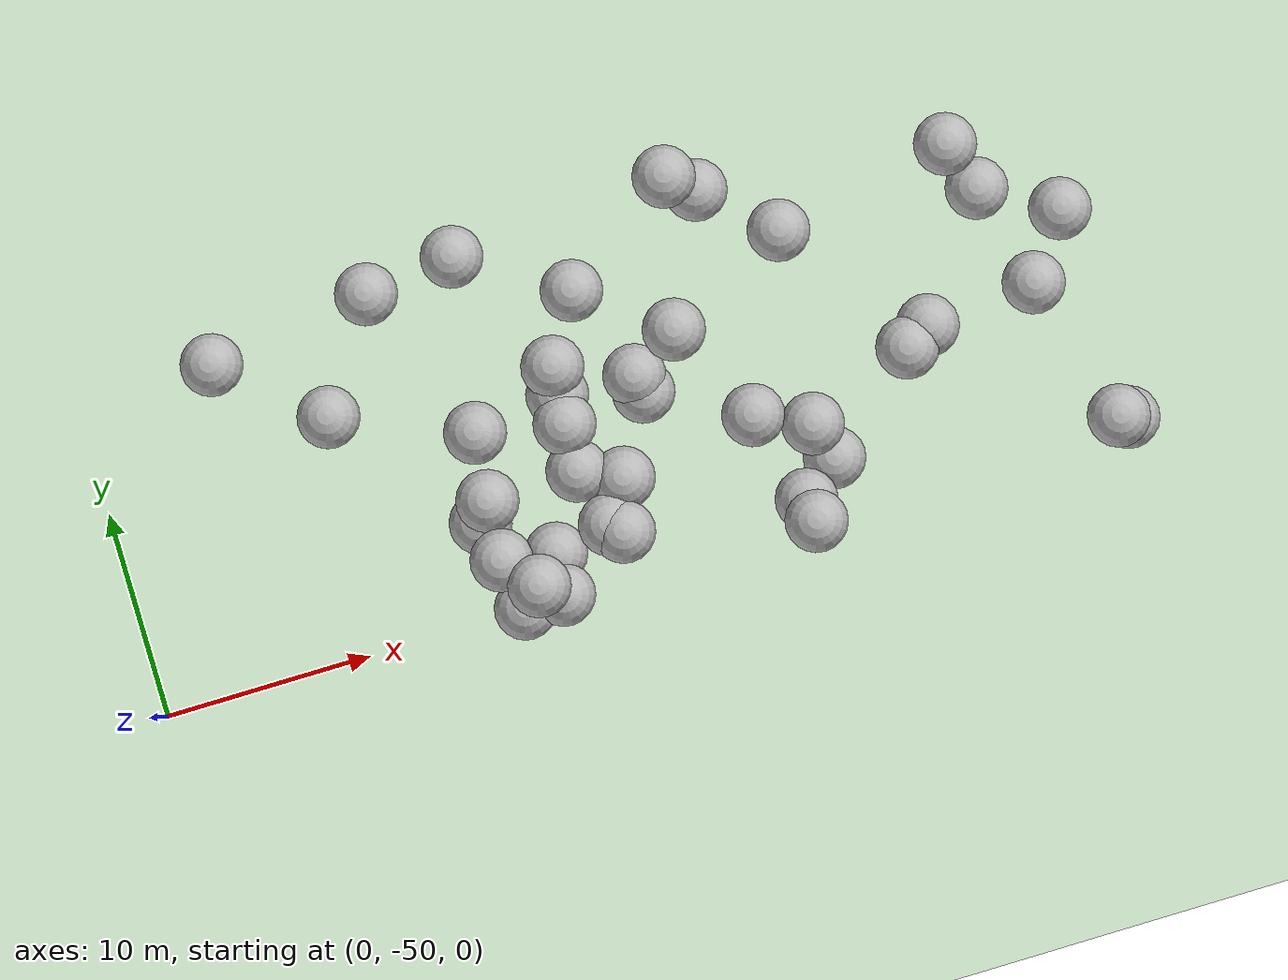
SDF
<sdf version="1.5">
 <world name="default">
  <model name="tree_simple494">
   <static>1</static>
   <link name="link">
    <pose>0 0 0.1 0 -0 0</pose>
    <collision name="collision_trunk">
     <pose>0 0 2 0 -0 0</pose>
     <geometry><cylinder><radius>0.25</radius><length>4</length></cylinder></geometry>
    </collision>
    <collision name="collision_treetop">
     <pose>0 0 5.2 0 -0 0</pose>
     <geometry><sphere><radius>1.5</radius></sphere></geometry>
    </collision>
    <visual name="trunk">
     <pose>0 0 2 0 -0 0</pose>
     <geometry><cylinder><radius>0.25</radius><length>4</length></cylinder></geometry>
     <material>
      <script>
       <uri>model://tree_simple/scripts</uri>
       <uri>model://tree_simple/materials/textures</uri>
       <name>TreeSimple/Trunk</name>
      </script>
     </material>
    </visual>
    <visual name="treetop">
     <pose>0 0 5.2 0 -0 0</pose>
     <geometry><sphere><radius>1.5</radius></sphere></geometry>
     <material>
      <script>
       <uri>model://tree_simple/scripts</uri>
       <uri>model://tree_simple/materials/textures</uri>
       <name>TreeSimple/Treetop</name>
      </script>
     </material>
    </visual>
   </link>
   <pose>39.6521252177 -42.647901406 -1.601959565637076 0 -0 0</pose>
  </model>
  <model name="tree_simple484">
   <static>1</static>
   <link name="link">
    <pose>0 0 0.1 0 -0 0</pose>
    <collision name="collision_trunk">
     <pose>0 0 2 0 -0 0</pose>
     <geometry><cylinder><radius>0.25</radius><length>4</length></cylinder></geometry>
    </collision>
    <collision name="collision_treetop">
     <pose>0 0 5.2 0 -0 0</pose>
     <geometry><sphere><radius>1.5</radius></sphere></geometry>
    </collision>
    <visual name="trunk">
     <pose>0 0 2 0 -0 0</pose>
     <geometry><cylinder><radius>0.25</radius><length>4</length></cylinder></geometry>
     <material>
      <script>
       <uri>model://tree_simple/scripts</uri>
       <uri>model://tree_simple/materials/textures</uri>
       <name>TreeSimple/Trunk</name>
      </script>
     </material>
    </visual>
    <visual name="treetop">
     <pose>0 0 5.2 0 -0 0</pose>
     <geometry><sphere><radius>1.5</radius></sphere></geometry>
     <material>
      <script>
       <uri>model://tree_simple/scripts</uri>
       <uri>model://tree_simple/materials/textures</uri>
       <name>TreeSimple/Treetop</name>
      </script>
     </material>
    </visual>
   </link>
   <pose>19.8605088225 -47.9062304077 -2.568141716396418 0 -0 0</pose>
  </model>
  <model name="tree_simple464">
   <static>1</static>
   <link name="link">
    <pose>0 0 0.1 0 -0 0</pose>
    <collision name="collision_trunk">
     <pose>0 0 2 0 -0 0</pose>
     <geometry><cylinder><radius>0.25</radius><length>4</length></cylinder></geometry>
    </collision>
    <collision name="collision_treetop">
     <pose>0 0 5.2 0 -0 0</pose>
     <geometry><sphere><radius>1.5</radius></sphere></geometry>
    </collision>
    <visual name="trunk">
     <pose>0 0 2 0 -0 0</pose>
     <geometry><cylinder><radius>0.25</radius><length>4</length></cylinder></geometry>
     <material>
      <script>
       <uri>model://tree_simple/scripts</uri>
       <uri>model://tree_simple/materials/textures</uri>
       <name>TreeSimple/Trunk</name>
      </script>
     </material>
    </visual>
    <visual name="treetop">
     <pose>0 0 5.2 0 -0 0</pose>
     <geometry><sphere><radius>1.5</radius></sphere></geometry>
     <material>
      <script>
       <uri>model://tree_simple/scripts</uri>
       <uri>model://tree_simple/materials/textures</uri>
       <name>TreeSimple/Treetop</name>
      </script>
     </material>
    </visual>
   </link>
   <pose>18.697132214 -49.1923863075 -0.11525973215710605 0 -0 0</pose>
  </model>
  <model name="tree_simple456">
   <static>1</static>
   <link name="link">
    <pose>0 0 0.1 0 -0 0</pose>
    <collision name="collision_trunk">
     <pose>0 0 2 0 -0 0</pose>
     <geometry><cylinder><radius>0.25</radius><length>4</length></cylinder></geometry>
    </collision>
    <collision name="collision_treetop">
     <pose>0 0 5.2 0 -0 0</pose>
     <geometry><sphere><radius>1.5</radius></sphere></geometry>
    </collision>
    <visual name="trunk">
     <pose>0 0 2 0 -0 0</pose>
     <geometry><cylinder><radius>0.25</radius><length>4</length></cylinder></geometry>
     <material>
      <script>
       <uri>model://tree_simple/scripts</uri>
       <uri>model://tree_simple/materials/textures</uri>
       <name>TreeSimple/Trunk</name>
      </script>
     </material>
    </visual>
    <visual name="treetop">
     <pose>0 0 5.2 0 -0 0</pose>
     <geometry><sphere><radius>1.5</radius></sphere></geometry>
     <material>
      <script>
       <uri>model://tree_simple/scripts</uri>
       <uri>model://tree_simple/materials/textures</uri>
       <name>TreeSimple/Treetop</name>
      </script>
     </material>
    </visual>
   </link>
   <pose>23.2076568155 -47.8591592767 -1.736414957528639 0 -0 0</pose>
  </model>
  <model name="tree_simple430">
   <static>1</static>
   <link name="link">
    <pose>0 0 0.1 0 -0 0</pose>
    <collision name="collision_trunk">
     <pose>0 0 2 0 -0 0</pose>
     <geometry><cylinder><radius>0.25</radius><length>4</length></cylinder></geometry>
    </collision>
    <collision name="collision_treetop">
     <pose>0 0 5.2 0 -0 0</pose>
     <geometry><sphere><radius>1.5</radius></sphere></geometry>
    </collision>
    <visual name="trunk">
     <pose>0 0 2 0 -0 0</pose>
     <geometry><cylinder><radius>0.25</radius><length>4</length></cylinder></geometry>
     <material>
      <script>
       <uri>model://tree_simple/scripts</uri>
       <uri>model://tree_simple/materials/textures</uri>
       <name>TreeSimple/Trunk</name>
      </script>
     </material>
    </visual>
    <visual name="treetop">
     <pose>0 0 5.2 0 -0 0</pose>
     <geometry><sphere><radius>1.5</radius></sphere></geometry>
     <material>
      <script>
       <uri>model://tree_simple/scripts</uri>
       <uri>model://tree_simple/materials/textures</uri>
       <name>TreeSimple/Treetop</name>
      </script>
     </material>
    </visual>
   </link>
   <pose>19.6675265043 -49.8829362896 -1.703781309365056 0 -0 0</pose>
  </model>
  <model name="tree_simple427">
   <static>1</static>
   <link name="link">
    <pose>0 0 0.1 0 -0 0</pose>
    <collision name="collision_trunk">
     <pose>0 0 2 0 -0 0</pose>
     <geometry><cylinder><radius>0.25</radius><length>4</length></cylinder></geometry>
    </collision>
    <collision name="collision_treetop">
     <pose>0 0 5.2 0 -0 0</pose>
     <geometry><sphere><radius>1.5</radius></sphere></geometry>
    </collision>
    <visual name="trunk">
     <pose>0 0 2 0 -0 0</pose>
     <geometry><cylinder><radius>0.25</radius><length>4</length></cylinder></geometry>
     <material>
      <script>
       <uri>model://tree_simple/scripts</uri>
       <uri>model://tree_simple/materials/textures</uri>
       <name>TreeSimple/Trunk</name>
      </script>
     </material>
    </visual>
    <visual name="treetop">
     <pose>0 0 5.2 0 -0 0</pose>
     <geometry><sphere><radius>1.5</radius></sphere></geometry>
     <material>
      <script>
       <uri>model://tree_simple/scripts</uri>
       <uri>model://tree_simple/materials/textures</uri>
       <name>TreeSimple/Treetop</name>
      </script>
     </material>
    </visual>
   </link>
   <pose>17.8220319496 -41.3749782968 -2.3696307674221067 0 -0 0</pose>
  </model>
  <model name="tree_simple423">
   <static>1</static>
   <link name="link">
    <pose>0 0 0.1 0 -0 0</pose>
    <collision name="collision_trunk">
     <pose>0 0 2 0 -0 0</pose>
     <geometry><cylinder><radius>0.25</radius><length>4</length></cylinder></geometry>
    </collision>
    <collision name="collision_treetop">
     <pose>0 0 5.2 0 -0 0</pose>
     <geometry><sphere><radius>1.5</radius></sphere></geometry>
    </collision>
    <visual name="trunk">
     <pose>0 0 2 0 -0 0</pose>
     <geometry><cylinder><radius>0.25</radius><length>4</length></cylinder></geometry>
     <material>
      <script>
       <uri>model://tree_simple/scripts</uri>
       <uri>model://tree_simple/materials/textures</uri>
       <name>TreeSimple/Trunk</name>
      </script>
     </material>
    </visual>
    <visual name="treetop">
     <pose>0 0 5.2 0 -0 0</pose>
     <geometry><sphere><radius>1.5</radius></sphere></geometry>
     <material>
      <script>
       <uri>model://tree_simple/scripts</uri>
       <uri>model://tree_simple/materials/textures</uri>
       <name>TreeSimple/Treetop</name>
      </script>
     </material>
    </visual>
   </link>
   <pose>22.6666902857 -47.3463091406 -1.957043072178223 0 -0 0</pose>
  </model>
  <model name="tree_simple422">
   <static>1</static>
   <link name="link">
    <pose>0 0 0.1 0 -0 0</pose>
    <collision name="collision_trunk">
     <pose>0 0 2 0 -0 0</pose>
     <geometry><cylinder><radius>0.25</radius><length>4</length></cylinder></geometry>
    </collision>
    <collision name="collision_treetop">
     <pose>0 0 5.2 0 -0 0</pose>
     <geometry><sphere><radius>1.5</radius></sphere></geometry>
    </collision>
    <visual name="trunk">
     <pose>0 0 2 0 -0 0</pose>
     <geometry><cylinder><radius>0.25</radius><length>4</length></cylinder></geometry>
     <material>
      <script>
       <uri>model://tree_simple/scripts</uri>
       <uri>model://tree_simple/materials/textures</uri>
       <name>TreeSimple/Trunk</name>
      </script>
     </material>
    </visual>
    <visual name="treetop">
     <pose>0 0 5.2 0 -0 0</pose>
     <geometry><sphere><radius>1.5</radius></sphere></geometry>
     <material>
      <script>
       <uri>model://tree_simple/scripts</uri>
       <uri>model://tree_simple/materials/textures</uri>
       <name>TreeSimple/Treetop</name>
      </script>
     </material>
    </visual>
   </link>
   <pose>46.9340594409 -49.3003062786 -0.717545281545801 0 -0 0</pose>
  </model>
  <model name="tree_simple406">
   <static>1</static>
   <link name="link">
    <pose>0 0 0.1 0 -0 0</pose>
    <collision name="collision_trunk">
     <pose>0 0 2 0 -0 0</pose>
     <geometry><cylinder><radius>0.25</radius><length>4</length></cylinder></geometry>
    </collision>
    <collision name="collision_treetop">
     <pose>0 0 5.2 0 -0 0</pose>
     <geometry><sphere><radius>1.5</radius></sphere></geometry>
    </collision>
    <visual name="trunk">
     <pose>0 0 2 0 -0 0</pose>
     <geometry><cylinder><radius>0.25</radius><length>4</length></cylinder></geometry>
     <material>
      <script>
       <uri>model://tree_simple/scripts</uri>
       <uri>model://tree_simple/materials/textures</uri>
       <name>TreeSimple/Trunk</name>
      </script>
     </material>
    </visual>
    <visual name="treetop">
     <pose>0 0 5.2 0 -0 0</pose>
     <geometry><sphere><radius>1.5</radius></sphere></geometry>
     <material>
      <script>
       <uri>model://tree_simple/scripts</uri>
       <uri>model://tree_simple/materials/textures</uri>
       <name>TreeSimple/Treetop</name>
      </script>
     </material>
    </visual>
   </link>
   <pose>31.8934217089 -48.8403630258 -2.7983030011231653 0 -0 0</pose>
  </model>
  <model name="tree_simple399">
   <static>1</static>
   <link name="link">
    <pose>0 0 0.1 0 -0 0</pose>
    <collision name="collision_trunk">
     <pose>0 0 2 0 -0 0</pose>
     <geometry><cylinder><radius>0.25</radius><length>4</length></cylinder></geometry>
    </collision>
    <collision name="collision_treetop">
     <pose>0 0 5.2 0 -0 0</pose>
     <geometry><sphere><radius>1.5</radius></sphere></geometry>
    </collision>
    <visual name="trunk">
     <pose>0 0 2 0 -0 0</pose>
     <geometry><cylinder><radius>0.25</radius><length>4</length></cylinder></geometry>
     <material>
      <script>
       <uri>model://tree_simple/scripts</uri>
       <uri>model://tree_simple/materials/textures</uri>
       <name>TreeSimple/Trunk</name>
      </script>
     </material>
    </visual>
    <visual name="treetop">
     <pose>0 0 5.2 0 -0 0</pose>
     <geometry><sphere><radius>1.5</radius></sphere></geometry>
     <material>
      <script>
       <uri>model://tree_simple/scripts</uri>
       <uri>model://tree_simple/materials/textures</uri>
       <name>TreeSimple/Treetop</name>
      </script>
     </material>
    </visual>
   </link>
   <pose>28.1463540184 -39.4724503771 -0.9812452284519781 0 -0 0</pose>
  </model>
  <model name="tree_simple362">
   <static>1</static>
   <link name="link">
    <pose>0 0 0.1 0 -0 0</pose>
    <collision name="collision_trunk">
     <pose>0 0 2 0 -0 0</pose>
     <geometry><cylinder><radius>0.25</radius><length>4</length></cylinder></geometry>
    </collision>
    <collision name="collision_treetop">
     <pose>0 0 5.2 0 -0 0</pose>
     <geometry><sphere><radius>1.5</radius></sphere></geometry>
    </collision>
    <visual name="trunk">
     <pose>0 0 2 0 -0 0</pose>
     <geometry><cylinder><radius>0.25</radius><length>4</length></cylinder></geometry>
     <material>
      <script>
       <uri>model://tree_simple/scripts</uri>
       <uri>model://tree_simple/materials/textures</uri>
       <name>TreeSimple/Trunk</name>
      </script>
     </material>
    </visual>
    <visual name="treetop">
     <pose>0 0 5.2 0 -0 0</pose>
     <geometry><sphere><radius>1.5</radius></sphere></geometry>
     <material>
      <script>
       <uri>model://tree_simple/scripts</uri>
       <uri>model://tree_simple/materials/textures</uri>
       <name>TreeSimple/Treetop</name>
      </script>
     </material>
    </visual>
   </link>
   <pose>44.985496552 -42.1503793978 -1.3581957760292536 0 -0 0</pose>
  </model>
  <model name="tree_simple355">
   <static>1</static>
   <link name="link">
    <pose>0 0 0.1 0 -0 0</pose>
    <collision name="collision_trunk">
     <pose>0 0 2 0 -0 0</pose>
     <geometry><cylinder><radius>0.25</radius><length>4</length></cylinder></geometry>
    </collision>
    <collision name="collision_treetop">
     <pose>0 0 5.2 0 -0 0</pose>
     <geometry><sphere><radius>1.5</radius></sphere></geometry>
    </collision>
    <visual name="trunk">
     <pose>0 0 2 0 -0 0</pose>
     <geometry><cylinder><radius>0.25</radius><length>4</length></cylinder></geometry>
     <material>
      <script>
       <uri>model://tree_simple/scripts</uri>
       <uri>model://tree_simple/materials/textures</uri>
       <name>TreeSimple/Trunk</name>
      </script>
     </material>
    </visual>
    <visual name="treetop">
     <pose>0 0 5.2 0 -0 0</pose>
     <geometry><sphere><radius>1.5</radius></sphere></geometry>
     <material>
      <script>
       <uri>model://tree_simple/scripts</uri>
       <uri>model://tree_simple/materials/textures</uri>
       <name>TreeSimple/Treetop</name>
      </script>
     </material>
    </visual>
   </link>
   <pose>25.975286884 -41.7874404901 -2.3355495982262253 0 -0 0</pose>
  </model>
  <model name="tree_simple329">
   <static>1</static>
   <link name="link">
    <pose>0 0 0.1 0 -0 0</pose>
    <collision name="collision_trunk">
     <pose>0 0 2 0 -0 0</pose>
     <geometry><cylinder><radius>0.25</radius><length>4</length></cylinder></geometry>
    </collision>
    <collision name="collision_treetop">
     <pose>0 0 5.2 0 -0 0</pose>
     <geometry><sphere><radius>1.5</radius></sphere></geometry>
    </collision>
    <visual name="trunk">
     <pose>0 0 2 0 -0 0</pose>
     <geometry><cylinder><radius>0.25</radius><length>4</length></cylinder></geometry>
     <material>
      <script>
       <uri>model://tree_simple/scripts</uri>
       <uri>model://tree_simple/materials/textures</uri>
       <name>TreeSimple/Trunk</name>
      </script>
     </material>
    </visual>
    <visual name="treetop">
     <pose>0 0 5.2 0 -0 0</pose>
     <geometry><sphere><radius>1.5</radius></sphere></geometry>
     <material>
      <script>
       <uri>model://tree_simple/scripts</uri>
       <uri>model://tree_simple/materials/textures</uri>
       <name>TreeSimple/Treetop</name>
      </script>
     </material>
    </visual>
   </link>
   <pose>22.038430334 -40.7859522783 -2.0823220013188153 0 -0 0</pose>
  </model>
  <model name="tree_simple300">
   <static>1</static>
   <link name="link">
    <pose>0 0 0.1 0 -0 0</pose>
    <collision name="collision_trunk">
     <pose>0 0 2 0 -0 0</pose>
     <geometry><cylinder><radius>0.25</radius><length>4</length></cylinder></geometry>
    </collision>
    <collision name="collision_treetop">
     <pose>0 0 5.2 0 -0 0</pose>
     <geometry><sphere><radius>1.5</radius></sphere></geometry>
    </collision>
    <visual name="trunk">
     <pose>0 0 2 0 -0 0</pose>
     <geometry><cylinder><radius>0.25</radius><length>4</length></cylinder></geometry>
     <material>
      <script>
       <uri>model://tree_simple/scripts</uri>
       <uri>model://tree_simple/materials/textures</uri>
       <name>TreeSimple/Trunk</name>
      </script>
     </material>
    </visual>
    <visual name="treetop">
     <pose>0 0 5.2 0 -0 0</pose>
     <geometry><sphere><radius>1.5</radius></sphere></geometry>
     <material>
      <script>
       <uri>model://tree_simple/scripts</uri>
       <uri>model://tree_simple/materials/textures</uri>
       <name>TreeSimple/Treetop</name>
      </script>
     </material>
    </visual>
   </link>
   <pose>34.2893754597 -36.2522401159 -2.972982537384032 0 -0 0</pose>
  </model>
  <model name="tree_simple281">
   <static>1</static>
   <link name="link">
    <pose>0 0 0.1 0 -0 0</pose>
    <collision name="collision_trunk">
     <pose>0 0 2 0 -0 0</pose>
     <geometry><cylinder><radius>0.25</radius><length>4</length></cylinder></geometry>
    </collision>
    <collision name="collision_treetop">
     <pose>0 0 5.2 0 -0 0</pose>
     <geometry><sphere><radius>1.5</radius></sphere></geometry>
    </collision>
    <visual name="trunk">
     <pose>0 0 2 0 -0 0</pose>
     <geometry><cylinder><radius>0.25</radius><length>4</length></cylinder></geometry>
     <material>
      <script>
       <uri>model://tree_simple/scripts</uri>
       <uri>model://tree_simple/materials/textures</uri>
       <name>TreeSimple/Trunk</name>
      </script>
     </material>
    </visual>
    <visual name="treetop">
     <pose>0 0 5.2 0 -0 0</pose>
     <geometry><sphere><radius>1.5</radius></sphere></geometry>
     <material>
      <script>
       <uri>model://tree_simple/scripts</uri>
       <uri>model://tree_simple/materials/textures</uri>
       <name>TreeSimple/Treetop</name>
      </script>
     </material>
    </visual>
   </link>
   <pose>17.7631793605 -49.9798329039 -2.204625489699892 0 -0 0</pose>
  </model>
  <model name="tree_simple280">
   <static>1</static>
   <link name="link">
    <pose>0 0 0.1 0 -0 0</pose>
    <collision name="collision_trunk">
     <pose>0 0 2 0 -0 0</pose>
     <geometry><cylinder><radius>0.25</radius><length>4</length></cylinder></geometry>
    </collision>
    <collision name="collision_treetop">
     <pose>0 0 5.2 0 -0 0</pose>
     <geometry><sphere><radius>1.5</radius></sphere></geometry>
    </collision>
    <visual name="trunk">
     <pose>0 0 2 0 -0 0</pose>
     <geometry><cylinder><radius>0.25</radius><length>4</length></cylinder></geometry>
     <material>
      <script>
       <uri>model://tree_simple/scripts</uri>
       <uri>model://tree_simple/materials/textures</uri>
       <name>TreeSimple/Trunk</name>
      </script>
     </material>
    </visual>
    <visual name="treetop">
     <pose>0 0 5.2 0 -0 0</pose>
     <geometry><sphere><radius>1.5</radius></sphere></geometry>
     <material>
      <script>
       <uri>model://tree_simple/scripts</uri>
       <uri>model://tree_simple/materials/textures</uri>
       <name>TreeSimple/Treetop</name>
      </script>
     </material>
    </visual>
   </link>
   <pose>42.8499474232 -34.7520527621 -0.9931672750604357 0 -0 0</pose>
  </model>
  <model name="tree_simple261">
   <static>1</static>
   <link name="link">
    <pose>0 0 0.1 0 -0 0</pose>
    <collision name="collision_trunk">
     <pose>0 0 2 0 -0 0</pose>
     <geometry><cylinder><radius>0.25</radius><length>4</length></cylinder></geometry>
    </collision>
    <collision name="collision_treetop">
     <pose>0 0 5.2 0 -0 0</pose>
     <geometry><sphere><radius>1.5</radius></sphere></geometry>
    </collision>
    <visual name="trunk">
     <pose>0 0 2 0 -0 0</pose>
     <geometry><cylinder><radius>0.25</radius><length>4</length></cylinder></geometry>
     <material>
      <script>
       <uri>model://tree_simple/scripts</uri>
       <uri>model://tree_simple/materials/textures</uri>
       <name>TreeSimple/Trunk</name>
      </script>
     </material>
    </visual>
    <visual name="treetop">
     <pose>0 0 5.2 0 -0 0</pose>
     <geometry><sphere><radius>1.5</radius></sphere></geometry>
     <material>
      <script>
       <uri>model://tree_simple/scripts</uri>
       <uri>model://tree_simple/materials/textures</uri>
       <name>TreeSimple/Treetop</name>
      </script>
     </material>
    </visual>
   </link>
   <pose>33.7827414367 -47.2764136507 -4.0 0 -0 0</pose>
  </model>
  <model name="tree_simple233">
   <static>1</static>
   <link name="link">
    <pose>0 0 0.1 0 -0 0</pose>
    <collision name="collision_trunk">
     <pose>0 0 2 0 -0 0</pose>
     <geometry><cylinder><radius>0.25</radius><length>4</length></cylinder></geometry>
    </collision>
    <collision name="collision_treetop">
     <pose>0 0 5.2 0 -0 0</pose>
     <geometry><sphere><radius>1.5</radius></sphere></geometry>
    </collision>
    <visual name="trunk">
     <pose>0 0 2 0 -0 0</pose>
     <geometry><cylinder><radius>0.25</radius><length>4</length></cylinder></geometry>
     <material>
      <script>
       <uri>model://tree_simple/scripts</uri>
       <uri>model://tree_simple/materials/textures</uri>
       <name>TreeSimple/Trunk</name>
      </script>
     </material>
    </visual>
    <visual name="treetop">
     <pose>0 0 5.2 0 -0 0</pose>
     <geometry><sphere><radius>1.5</radius></sphere></geometry>
     <material>
      <script>
       <uri>model://tree_simple/scripts</uri>
       <uri>model://tree_simple/materials/textures</uri>
       <name>TreeSimple/Treetop</name>
      </script>
     </material>
    </visual>
   </link>
   <pose>21.929125889 -44.4760714013 -2.0635850668777715 0 -0 0</pose>
  </model>
  <model name="tree_simple225">
   <static>1</static>
   <link name="link">
    <pose>0 0 0.1 0 -0 0</pose>
    <collision name="collision_trunk">
     <pose>0 0 2 0 -0 0</pose>
     <geometry><cylinder><radius>0.25</radius><length>4</length></cylinder></geometry>
    </collision>
    <collision name="collision_treetop">
     <pose>0 0 5.2 0 -0 0</pose>
     <geometry><sphere><radius>1.5</radius></sphere></geometry>
    </collision>
    <visual name="trunk">
     <pose>0 0 2 0 -0 0</pose>
     <geometry><cylinder><radius>0.25</radius><length>4</length></cylinder></geometry>
     <material>
      <script>
       <uri>model://tree_simple/scripts</uri>
       <uri>model://tree_simple/materials/textures</uri>
       <name>TreeSimple/Trunk</name>
      </script>
     </material>
    </visual>
    <visual name="treetop">
     <pose>0 0 5.2 0 -0 0</pose>
     <geometry><sphere><radius>1.5</radius></sphere></geometry>
     <material>
      <script>
       <uri>model://tree_simple/scripts</uri>
       <uri>model://tree_simple/materials/textures</uri>
       <name>TreeSimple/Treetop</name>
      </script>
     </material>
    </visual>
   </link>
   <pose>30.586439973 -44.3528824328 -1.5686346131505668 0 -0 0</pose>
  </model>
  <model name="tree_simple215">
   <static>1</static>
   <link name="link">
    <pose>0 0 0.1 0 -0 0</pose>
    <collision name="collision_trunk">
     <pose>0 0 2 0 -0 0</pose>
     <geometry><cylinder><radius>0.25</radius><length>4</length></cylinder></geometry>
    </collision>
    <collision name="collision_treetop">
     <pose>0 0 5.2 0 -0 0</pose>
     <geometry><sphere><radius>1.5</radius></sphere></geometry>
    </collision>
    <visual name="trunk">
     <pose>0 0 2 0 -0 0</pose>
     <geometry><cylinder><radius>0.25</radius><length>4</length></cylinder></geometry>
     <material>
      <script>
       <uri>model://tree_simple/scripts</uri>
       <uri>model://tree_simple/materials/textures</uri>
       <name>TreeSimple/Trunk</name>
      </script>
     </material>
    </visual>
    <visual name="treetop">
     <pose>0 0 5.2 0 -0 0</pose>
     <geometry><sphere><radius>1.5</radius></sphere></geometry>
     <material>
      <script>
       <uri>model://tree_simple/scripts</uri>
       <uri>model://tree_simple/materials/textures</uri>
       <name>TreeSimple/Treetop</name>
      </script>
     </material>
    </visual>
   </link>
   <pose>6.8108440726 -34.7298391892 -2.789499912271336 0 -0 0</pose>
  </model>
  <model name="tree_simple207">
   <static>1</static>
   <link name="link">
    <pose>0 0 0.1 0 -0 0</pose>
    <collision name="collision_trunk">
     <pose>0 0 2 0 -0 0</pose>
     <geometry><cylinder><radius>0.25</radius><length>4</length></cylinder></geometry>
    </collision>
    <collision name="collision_treetop">
     <pose>0 0 5.2 0 -0 0</pose>
     <geometry><sphere><radius>1.5</radius></sphere></geometry>
    </collision>
    <visual name="trunk">
     <pose>0 0 2 0 -0 0</pose>
     <geometry><cylinder><radius>0.25</radius><length>4</length></cylinder></geometry>
     <material>
      <script>
       <uri>model://tree_simple/scripts</uri>
       <uri>model://tree_simple/materials/textures</uri>
       <name>TreeSimple/Trunk</name>
      </script>
     </material>
    </visual>
    <visual name="treetop">
     <pose>0 0 5.2 0 -0 0</pose>
     <geometry><sphere><radius>1.5</radius></sphere></geometry>
     <material>
      <script>
       <uri>model://tree_simple/scripts</uri>
       <uri>model://tree_simple/materials/textures</uri>
       <name>TreeSimple/Treetop</name>
      </script>
     </material>
    </visual>
   </link>
   <pose>29.7171513821 -32.5331350523 -0.0 0 -0 0</pose>
  </model>
  <model name="tree_simple202">
   <static>1</static>
   <link name="link">
    <pose>0 0 0.1 0 -0 0</pose>
    <collision name="collision_trunk">
     <pose>0 0 2 0 -0 0</pose>
     <geometry><cylinder><radius>0.25</radius><length>4</length></cylinder></geometry>
    </collision>
    <collision name="collision_treetop">
     <pose>0 0 5.2 0 -0 0</pose>
     <geometry><sphere><radius>1.5</radius></sphere></geometry>
    </collision>
    <visual name="trunk">
     <pose>0 0 2 0 -0 0</pose>
     <geometry><cylinder><radius>0.25</radius><length>4</length></cylinder></geometry>
     <material>
      <script>
       <uri>model://tree_simple/scripts</uri>
       <uri>model://tree_simple/materials/textures</uri>
       <name>TreeSimple/Trunk</name>
      </script>
     </material>
    </visual>
    <visual name="treetop">
     <pose>0 0 5.2 0 -0 0</pose>
     <geometry><sphere><radius>1.5</radius></sphere></geometry>
     <material>
      <script>
       <uri>model://tree_simple/scripts</uri>
       <uri>model://tree_simple/materials/textures</uri>
       <name>TreeSimple/Treetop</name>
      </script>
     </material>
    </visual>
   </link>
   <pose>33.1651643467 -45.5260416914 -1.9142868985747477 0 -0 0</pose>
  </model>
  <model name="tree_simple182">
   <static>1</static>
   <link name="link">
    <pose>0 0 0.1 0 -0 0</pose>
    <collision name="collision_trunk">
     <pose>0 0 2 0 -0 0</pose>
     <geometry><cylinder><radius>0.25</radius><length>4</length></cylinder></geometry>
    </collision>
    <collision name="collision_treetop">
     <pose>0 0 5.2 0 -0 0</pose>
     <geometry><sphere><radius>1.5</radius></sphere></geometry>
    </collision>
    <visual name="trunk">
     <pose>0 0 2 0 -0 0</pose>
     <geometry><cylinder><radius>0.25</radius><length>4</length></cylinder></geometry>
     <material>
      <script>
       <uri>model://tree_simple/scripts</uri>
       <uri>model://tree_simple/materials/textures</uri>
       <name>TreeSimple/Trunk</name>
      </script>
     </material>
    </visual>
    <visual name="treetop">
     <pose>0 0 5.2 0 -0 0</pose>
     <geometry><sphere><radius>1.5</radius></sphere></geometry>
     <material>
      <script>
       <uri>model://tree_simple/scripts</uri>
       <uri>model://tree_simple/materials/textures</uri>
       <name>TreeSimple/Treetop</name>
      </script>
     </material>
    </visual>
   </link>
   <pose>31.0475626231 -33.3896196972 -1.9891481035342569 0 -0 0</pose>
  </model>
  <model name="tree_simple173">
   <static>1</static>
   <link name="link">
    <pose>0 0 0.1 0 -0 0</pose>
    <collision name="collision_trunk">
     <pose>0 0 2 0 -0 0</pose>
     <geometry><cylinder><radius>0.25</radius><length>4</length></cylinder></geometry>
    </collision>
    <collision name="collision_treetop">
     <pose>0 0 5.2 0 -0 0</pose>
     <geometry><sphere><radius>1.5</radius></sphere></geometry>
    </collision>
    <visual name="trunk">
     <pose>0 0 2 0 -0 0</pose>
     <geometry><cylinder><radius>0.25</radius><length>4</length></cylinder></geometry>
     <material>
      <script>
       <uri>model://tree_simple/scripts</uri>
       <uri>model://tree_simple/materials/textures</uri>
       <name>TreeSimple/Trunk</name>
      </script>
     </material>
    </visual>
    <visual name="treetop">
     <pose>0 0 5.2 0 -0 0</pose>
     <geometry><sphere><radius>1.5</radius></sphere></geometry>
     <material>
      <script>
       <uri>model://tree_simple/scripts</uri>
       <uri>model://tree_simple/materials/textures</uri>
       <name>TreeSimple/Treetop</name>
      </script>
     </material>
    </visual>
   </link>
   <pose>43.8187371286 -37.037678565 -2.7338198056814638 0 -0 0</pose>
  </model>
  <model name="tree_simple169">
   <static>1</static>
   <link name="link">
    <pose>0 0 0.1 0 -0 0</pose>
    <collision name="collision_trunk">
     <pose>0 0 2 0 -0 0</pose>
     <geometry><cylinder><radius>0.25</radius><length>4</length></cylinder></geometry>
    </collision>
    <collision name="collision_treetop">
     <pose>0 0 5.2 0 -0 0</pose>
     <geometry><sphere><radius>1.5</radius></sphere></geometry>
    </collision>
    <visual name="trunk">
     <pose>0 0 2 0 -0 0</pose>
     <geometry><cylinder><radius>0.25</radius><length>4</length></cylinder></geometry>
     <material>
      <script>
       <uri>model://tree_simple/scripts</uri>
       <uri>model://tree_simple/materials/textures</uri>
       <name>TreeSimple/Trunk</name>
      </script>
     </material>
    </visual>
    <visual name="treetop">
     <pose>0 0 5.2 0 -0 0</pose>
     <geometry><sphere><radius>1.5</radius></sphere></geometry>
     <material>
      <script>
       <uri>model://tree_simple/scripts</uri>
       <uri>model://tree_simple/materials/textures</uri>
       <name>TreeSimple/Treetop</name>
      </script>
     </material>
    </visual>
   </link>
   <pose>25.7710646255 -40.9498520998 -1.775864440648949 0 -0 0</pose>
  </model>
  <model name="tree_simple167">
   <static>1</static>
   <link name="link">
    <pose>0 0 0.1 0 -0 0</pose>
    <collision name="collision_trunk">
     <pose>0 0 2 0 -0 0</pose>
     <geometry><cylinder><radius>0.25</radius><length>4</length></cylinder></geometry>
    </collision>
    <collision name="collision_treetop">
     <pose>0 0 5.2 0 -0 0</pose>
     <geometry><sphere><radius>1.5</radius></sphere></geometry>
    </collision>
    <visual name="trunk">
     <pose>0 0 2 0 -0 0</pose>
     <geometry><cylinder><radius>0.25</radius><length>4</length></cylinder></geometry>
     <material>
      <script>
       <uri>model://tree_simple/scripts</uri>
       <uri>model://tree_simple/materials/textures</uri>
       <name>TreeSimple/Trunk</name>
      </script>
     </material>
    </visual>
    <visual name="treetop">
     <pose>0 0 5.2 0 -0 0</pose>
     <geometry><sphere><radius>1.5</radius></sphere></geometry>
     <material>
      <script>
       <uri>model://tree_simple/scripts</uri>
       <uri>model://tree_simple/materials/textures</uri>
       <name>TreeSimple/Treetop</name>
      </script>
     </material>
    </visual>
   </link>
   <pose>14.7724548693 -33.6841584831 -1.8295209374604153 0 -0 0</pose>
  </model>
  <model name="tree_simple153">
   <static>1</static>
   <link name="link">
    <pose>0 0 0.1 0 -0 0</pose>
    <collision name="collision_trunk">
     <pose>0 0 2 0 -0 0</pose>
     <geometry><cylinder><radius>0.25</radius><length>4</length></cylinder></geometry>
    </collision>
    <collision name="collision_treetop">
     <pose>0 0 5.2 0 -0 0</pose>
     <geometry><sphere><radius>1.5</radius></sphere></geometry>
    </collision>
    <visual name="trunk">
     <pose>0 0 2 0 -0 0</pose>
     <geometry><cylinder><radius>0.25</radius><length>4</length></cylinder></geometry>
     <material>
      <script>
       <uri>model://tree_simple/scripts</uri>
       <uri>model://tree_simple/materials/textures</uri>
       <name>TreeSimple/Trunk</name>
      </script>
     </material>
    </visual>
    <visual name="treetop">
     <pose>0 0 5.2 0 -0 0</pose>
     <geometry><sphere><radius>1.5</radius></sphere></geometry>
     <material>
      <script>
       <uri>model://tree_simple/scripts</uri>
       <uri>model://tree_simple/materials/textures</uri>
       <name>TreeSimple/Treetop</name>
      </script>
     </material>
    </visual>
   </link>
   <pose>24.0970841452 -36.1585269214 -3.4548942399160865 0 -0 0</pose>
  </model>
  <model name="tree_simple139">
   <static>1</static>
   <link name="link">
    <pose>0 0 0.1 0 -0 0</pose>
    <collision name="collision_trunk">
     <pose>0 0 2 0 -0 0</pose>
     <geometry><cylinder><radius>0.25</radius><length>4</length></cylinder></geometry>
    </collision>
    <collision name="collision_treetop">
     <pose>0 0 5.2 0 -0 0</pose>
     <geometry><sphere><radius>1.5</radius></sphere></geometry>
    </collision>
    <visual name="trunk">
     <pose>0 0 2 0 -0 0</pose>
     <geometry><cylinder><radius>0.25</radius><length>4</length></cylinder></geometry>
     <material>
      <script>
       <uri>model://tree_simple/scripts</uri>
       <uri>model://tree_simple/materials/textures</uri>
       <name>TreeSimple/Trunk</name>
      </script>
     </material>
    </visual>
    <visual name="treetop">
     <pose>0 0 5.2 0 -0 0</pose>
     <geometry><sphere><radius>1.5</radius></sphere></geometry>
     <material>
      <script>
       <uri>model://tree_simple/scripts</uri>
       <uri>model://tree_simple/materials/textures</uri>
       <name>TreeSimple/Treetop</name>
      </script>
     </material>
    </visual>
   </link>
   <pose>16.853661786 -45.5057571818 -2.9107636177293177 0 -0 0</pose>
  </model>
  <model name="tree_simple136">
   <static>1</static>
   <link name="link">
    <pose>0 0 0.1 0 -0 0</pose>
    <collision name="collision_trunk">
     <pose>0 0 2 0 -0 0</pose>
     <geometry><cylinder><radius>0.25</radius><length>4</length></cylinder></geometry>
    </collision>
    <collision name="collision_treetop">
     <pose>0 0 5.2 0 -0 0</pose>
     <geometry><sphere><radius>1.5</radius></sphere></geometry>
    </collision>
    <visual name="trunk">
     <pose>0 0 2 0 -0 0</pose>
     <geometry><cylinder><radius>0.25</radius><length>4</length></cylinder></geometry>
     <material>
      <script>
       <uri>model://tree_simple/scripts</uri>
       <uri>model://tree_simple/materials/textures</uri>
       <name>TreeSimple/Trunk</name>
      </script>
     </material>
    </visual>
    <visual name="treetop">
     <pose>0 0 5.2 0 -0 0</pose>
     <geometry><sphere><radius>1.5</radius></sphere></geometry>
     <material>
      <script>
       <uri>model://tree_simple/scripts</uri>
       <uri>model://tree_simple/materials/textures</uri>
       <name>TreeSimple/Treetop</name>
      </script>
     </material>
    </visual>
   </link>
   <pose>47.5460904113 -49.4529023421 -2.6591898618233283 0 -0 0</pose>
  </model>
  <model name="tree_simple123">
   <static>1</static>
   <link name="link">
    <pose>0 0 0.1 0 -0 0</pose>
    <collision name="collision_trunk">
     <pose>0 0 2 0 -0 0</pose>
     <geometry><cylinder><radius>0.25</radius><length>4</length></cylinder></geometry>
    </collision>
    <collision name="collision_treetop">
     <pose>0 0 5.2 0 -0 0</pose>
     <geometry><sphere><radius>1.5</radius></sphere></geometry>
    </collision>
    <visual name="trunk">
     <pose>0 0 2 0 -0 0</pose>
     <geometry><cylinder><radius>0.25</radius><length>4</length></cylinder></geometry>
     <material>
      <script>
       <uri>model://tree_simple/scripts</uri>
       <uri>model://tree_simple/materials/textures</uri>
       <name>TreeSimple/Trunk</name>
      </script>
     </material>
    </visual>
    <visual name="treetop">
     <pose>0 0 5.2 0 -0 0</pose>
     <geometry><sphere><radius>1.5</radius></sphere></geometry>
     <material>
      <script>
       <uri>model://tree_simple/scripts</uri>
       <uri>model://tree_simple/materials/textures</uri>
       <name>TreeSimple/Treetop</name>
      </script>
     </material>
    </visual>
   </link>
   <pose>17.3351285606 -47.5264442332 -1.0635188458033238 0 -0 0</pose>
  </model>
  <model name="tree_simple115">
   <static>1</static>
   <link name="link">
    <pose>0 0 0.1 0 -0 0</pose>
    <collision name="collision_trunk">
     <pose>0 0 2 0 -0 0</pose>
     <geometry><cylinder><radius>0.25</radius><length>4</length></cylinder></geometry>
    </collision>
    <collision name="collision_treetop">
     <pose>0 0 5.2 0 -0 0</pose>
     <geometry><sphere><radius>1.5</radius></sphere></geometry>
    </collision>
    <visual name="trunk">
     <pose>0 0 2 0 -0 0</pose>
     <geometry><cylinder><radius>0.25</radius><length>4</length></cylinder></geometry>
     <material>
      <script>
       <uri>model://tree_simple/scripts</uri>
       <uri>model://tree_simple/materials/textures</uri>
       <name>TreeSimple/Trunk</name>
      </script>
     </material>
    </visual>
    <visual name="treetop">
     <pose>0 0 5.2 0 -0 0</pose>
     <geometry><sphere><radius>1.5</radius></sphere></geometry>
     <material>
      <script>
       <uri>model://tree_simple/scripts</uri>
       <uri>model://tree_simple/materials/textures</uri>
       <name>TreeSimple/Treetop</name>
      </script>
     </material>
    </visual>
   </link>
   <pose>23.9238582862 -45.4027076844 -2.2391468109036405 0 -0 0</pose>
  </model>
  <model name="tree_simple96">
   <static>1</static>
   <link name="link">
    <pose>0 0 0.1 0 -0 0</pose>
    <collision name="collision_trunk">
     <pose>0 0 2 0 -0 0</pose>
     <geometry><cylinder><radius>0.25</radius><length>4</length></cylinder></geometry>
    </collision>
    <collision name="collision_treetop">
     <pose>0 0 5.2 0 -0 0</pose>
     <geometry><sphere><radius>1.5</radius></sphere></geometry>
    </collision>
    <visual name="trunk">
     <pose>0 0 2 0 -0 0</pose>
     <geometry><cylinder><radius>0.25</radius><length>4</length></cylinder></geometry>
     <material>
      <script>
       <uri>model://tree_simple/scripts</uri>
       <uri>model://tree_simple/materials/textures</uri>
       <name>TreeSimple/Trunk</name>
      </script>
     </material>
    </visual>
    <visual name="treetop">
     <pose>0 0 5.2 0 -0 0</pose>
     <geometry><sphere><radius>1.5</radius></sphere></geometry>
     <material>
      <script>
       <uri>model://tree_simple/scripts</uri>
       <uri>model://tree_simple/materials/textures</uri>
       <name>TreeSimple/Treetop</name>
      </script>
     </material>
    </visual>
   </link>
   <pose>17.4748828609 -44.6574809929 -1.5395722942744303 0 -0 0</pose>
  </model>
  <model name="tree_simple56">
   <static>1</static>
   <link name="link">
    <pose>0 0 0.1 0 -0 0</pose>
    <collision name="collision_trunk">
     <pose>0 0 2 0 -0 0</pose>
     <geometry><cylinder><radius>0.25</radius><length>4</length></cylinder></geometry>
    </collision>
    <collision name="collision_treetop">
     <pose>0 0 5.2 0 -0 0</pose>
     <geometry><sphere><radius>1.5</radius></sphere></geometry>
    </collision>
    <visual name="trunk">
     <pose>0 0 2 0 -0 0</pose>
     <geometry><cylinder><radius>0.25</radius><length>4</length></cylinder></geometry>
     <material>
      <script>
       <uri>model://tree_simple/scripts</uri>
       <uri>model://tree_simple/materials/textures</uri>
       <name>TreeSimple/Trunk</name>
      </script>
     </material>
    </visual>
    <visual name="treetop">
     <pose>0 0 5.2 0 -0 0</pose>
     <geometry><sphere><radius>1.5</radius></sphere></geometry>
     <material>
      <script>
       <uri>model://tree_simple/scripts</uri>
       <uri>model://tree_simple/materials/textures</uri>
       <name>TreeSimple/Treetop</name>
      </script>
     </material>
    </visual>
   </link>
   <pose>38.4020388854 -43.3995733347 -1.1280834872177912 0 -0 0</pose>
  </model>
  <model name="tree_simple52">
   <static>1</static>
   <link name="link">
    <pose>0 0 0.1 0 -0 0</pose>
    <collision name="collision_trunk">
     <pose>0 0 2 0 -0 0</pose>
     <geometry><cylinder><radius>0.25</radius><length>4</length></cylinder></geometry>
    </collision>
    <collision name="collision_treetop">
     <pose>0 0 5.2 0 -0 0</pose>
     <geometry><sphere><radius>1.5</radius></sphere></geometry>
    </collision>
    <visual name="trunk">
     <pose>0 0 2 0 -0 0</pose>
     <geometry><cylinder><radius>0.25</radius><length>4</length></cylinder></geometry>
     <material>
      <script>
       <uri>model://tree_simple/scripts</uri>
       <uri>model://tree_simple/materials/textures</uri>
       <name>TreeSimple/Trunk</name>
      </script>
     </material>
    </visual>
    <visual name="treetop">
     <pose>0 0 5.2 0 -0 0</pose>
     <geometry><sphere><radius>1.5</radius></sphere></geometry>
     <material>
      <script>
       <uri>model://tree_simple/scripts</uri>
       <uri>model://tree_simple/materials/textures</uri>
       <name>TreeSimple/Treetop</name>
      </script>
     </material>
    </visual>
   </link>
   <pose>22.195457895 -39.5072380211 -1.098520277086975 0 -0 0</pose>
  </model>
  <model name="tree_simple42">
   <static>1</static>
   <link name="link">
    <pose>0 0 0.1 0 -0 0</pose>
    <collision name="collision_trunk">
     <pose>0 0 2 0 -0 0</pose>
     <geometry><cylinder><radius>0.25</radius><length>4</length></cylinder></geometry>
    </collision>
    <collision name="collision_treetop">
     <pose>0 0 5.2 0 -0 0</pose>
     <geometry><sphere><radius>1.5</radius></sphere></geometry>
    </collision>
    <visual name="trunk">
     <pose>0 0 2 0 -0 0</pose>
     <geometry><cylinder><radius>0.25</radius><length>4</length></cylinder></geometry>
     <material>
      <script>
       <uri>model://tree_simple/scripts</uri>
       <uri>model://tree_simple/materials/textures</uri>
       <name>TreeSimple/Trunk</name>
      </script>
     </material>
    </visual>
    <visual name="treetop">
     <pose>0 0 5.2 0 -0 0</pose>
     <geometry><sphere><radius>1.5</radius></sphere></geometry>
     <material>
      <script>
       <uri>model://tree_simple/scripts</uri>
       <uri>model://tree_simple/materials/textures</uri>
       <name>TreeSimple/Treetop</name>
      </script>
     </material>
    </visual>
   </link>
   <pose>19.1195153572 -33.0751098478 -2.609602531910241 0 -0 0</pose>
  </model>
  <model name="tree_simple22">
   <static>1</static>
   <link name="link">
    <pose>0 0 0.1 0 -0 0</pose>
    <collision name="collision_trunk">
     <pose>0 0 2 0 -0 0</pose>
     <geometry><cylinder><radius>0.25</radius><length>4</length></cylinder></geometry>
    </collision>
    <collision name="collision_treetop">
     <pose>0 0 5.2 0 -0 0</pose>
     <geometry><sphere><radius>1.5</radius></sphere></geometry>
    </collision>
    <visual name="trunk">
     <pose>0 0 2 0 -0 0</pose>
     <geometry><cylinder><radius>0.25</radius><length>4</length></cylinder></geometry>
     <material>
      <script>
       <uri>model://tree_simple/scripts</uri>
       <uri>model://tree_simple/materials/textures</uri>
       <name>TreeSimple/Trunk</name>
      </script>
     </material>
    </visual>
    <visual name="treetop">
     <pose>0 0 5.2 0 -0 0</pose>
     <geometry><sphere><radius>1.5</radius></sphere></geometry>
     <material>
      <script>
       <uri>model://tree_simple/scripts</uri>
       <uri>model://tree_simple/materials/textures</uri>
       <name>TreeSimple/Treetop</name>
      </script>
     </material>
    </visual>
   </link>
   <pose>11.4199673575 -38.694355257 -2.3347479528935327 0 -0 0</pose>
  </model>
  <model name="tree_simple16">
   <static>1</static>
   <link name="link">
    <pose>0 0 0.1 0 -0 0</pose>
    <collision name="collision_trunk">
     <pose>0 0 2 0 -0 0</pose>
     <geometry><cylinder><radius>0.25</radius><length>4</length></cylinder></geometry>
    </collision>
    <collision name="collision_treetop">
     <pose>0 0 5.2 0 -0 0</pose>
     <geometry><sphere><radius>1.5</radius></sphere></geometry>
    </collision>
    <visual name="trunk">
     <pose>0 0 2 0 -0 0</pose>
     <geometry><cylinder><radius>0.25</radius><length>4</length></cylinder></geometry>
     <material>
      <script>
       <uri>model://tree_simple/scripts</uri>
       <uri>model://tree_simple/materials/textures</uri>
       <name>TreeSimple/Trunk</name>
      </script>
     </material>
    </visual>
    <visual name="treetop">
     <pose>0 0 5.2 0 -0 0</pose>
     <geometry><sphere><radius>1.5</radius></sphere></geometry>
     <material>
      <script>
       <uri>model://tree_simple/scripts</uri>
       <uri>model://tree_simple/materials/textures</uri>
       <name>TreeSimple/Treetop</name>
      </script>
     </material>
    </visual>
   </link>
   <pose>32.0026070431 -49.9548957823 -1.5300199493643163 0 -0 0</pose>
  </model>
  <model name="tree_simple13">
   <static>1</static>
   <link name="link">
    <pose>0 0 0.1 0 -0 0</pose>
    <collision name="collision_trunk">
     <pose>0 0 2 0 -0 0</pose>
     <geometry><cylinder><radius>0.25</radius><length>4</length></cylinder></geometry>
    </collision>
    <collision name="collision_treetop">
     <pose>0 0 5.2 0 -0 0</pose>
     <geometry><sphere><radius>1.5</radius></sphere></geometry>
    </collision>
    <visual name="trunk">
     <pose>0 0 2 0 -0 0</pose>
     <geometry><cylinder><radius>0.25</radius><length>4</length></cylinder></geometry>
     <material>
      <script>
       <uri>model://tree_simple/scripts</uri>
       <uri>model://tree_simple/materials/textures</uri>
       <name>TreeSimple/Trunk</name>
      </script>
     </material>
    </visual>
    <visual name="treetop">
     <pose>0 0 5.2 0 -0 0</pose>
     <geometry><sphere><radius>1.5</radius></sphere></geometry>
     <material>
      <script>
       <uri>model://tree_simple/scripts</uri>
       <uri>model://tree_simple/materials/textures</uri>
       <name>TreeSimple/Treetop</name>
      </script>
     </material>
    </visual>
   </link>
   <pose>21.9742431084 -42.2362921442 -1.4792796289126167 0 -0 0</pose>
  </model>
  <model name="tree_simple5">
   <static>1</static>
   <link name="link">
    <pose>0 0 0.1 0 -0 0</pose>
    <collision name="collision_trunk">
     <pose>0 0 2 0 -0 0</pose>
     <geometry><cylinder><radius>0.25</radius><length>4</length></cylinder></geometry>
    </collision>
    <collision name="collision_treetop">
     <pose>0 0 5.2 0 -0 0</pose>
     <geometry><sphere><radius>1.5</radius></sphere></geometry>
    </collision>
    <visual name="trunk">
     <pose>0 0 2 0 -0 0</pose>
     <geometry><cylinder><radius>0.25</radius><length>4</length></cylinder></geometry>
     <material>
      <script>
       <uri>model://tree_simple/scripts</uri>
       <uri>model://tree_simple/materials/textures</uri>
       <name>TreeSimple/Trunk</name>
      </script>
     </material>
    </visual>
    <visual name="treetop">
     <pose>0 0 5.2 0 -0 0</pose>
     <geometry><sphere><radius>1.5</radius></sphere></geometry>
     <material>
      <script>
       <uri>model://tree_simple/scripts</uri>
       <uri>model://tree_simple/materials/textures</uri>
       <name>TreeSimple/Treetop</name>
      </script>
     </material>
    </visual>
   </link>
   <pose>47.2513402204 -39.1195744198 -2.104818591072751 0 -0 0</pose>
  </model>
  <model name="ground_plane">
   <static>true</static>
   <link name="link">
    <collision name="collision">
     <geometry><plane><normal>0 0 1</normal><size>250 250</size></plane></geometry>
     <surface><friction><ode><mu>1</mu><mu2>1</mu2></ode></friction></surface>
    </collision>
    <visual name="grass">
     <cast_shadows>false</cast_shadows>
     <geometry><plane><normal>0 0 1</normal><size>150 250</size></plane></geometry>
     <material>
      <script><uri>file://media/materials/scripts/Gazebo.material</uri><name>Gazebo/Grass</name></script>
     </material>
    </visual>
   </link>
  </model>
 </world>
</sdf>
